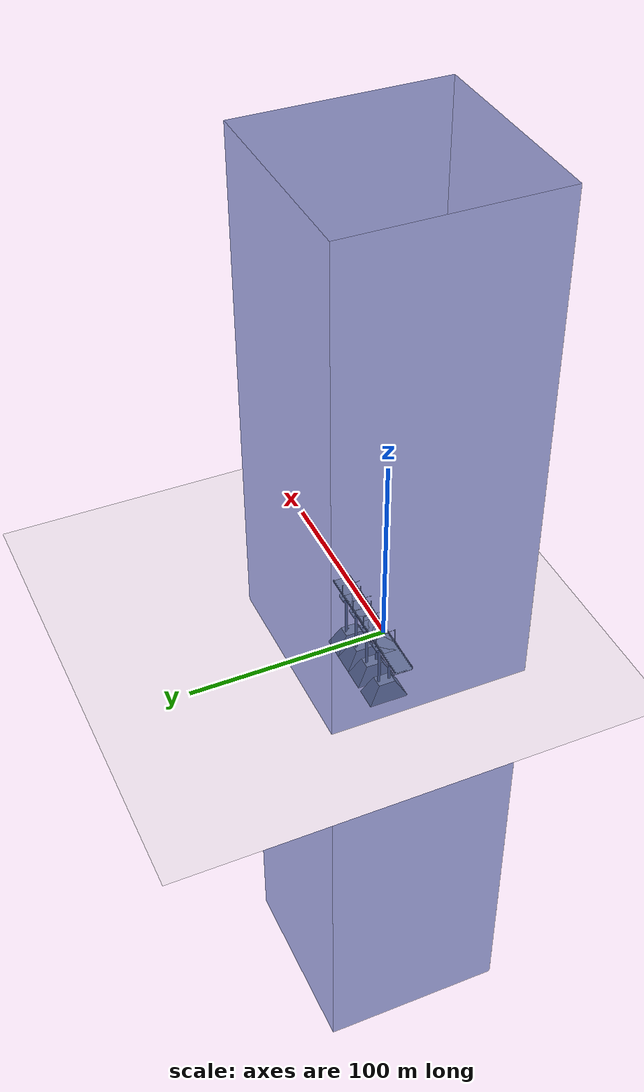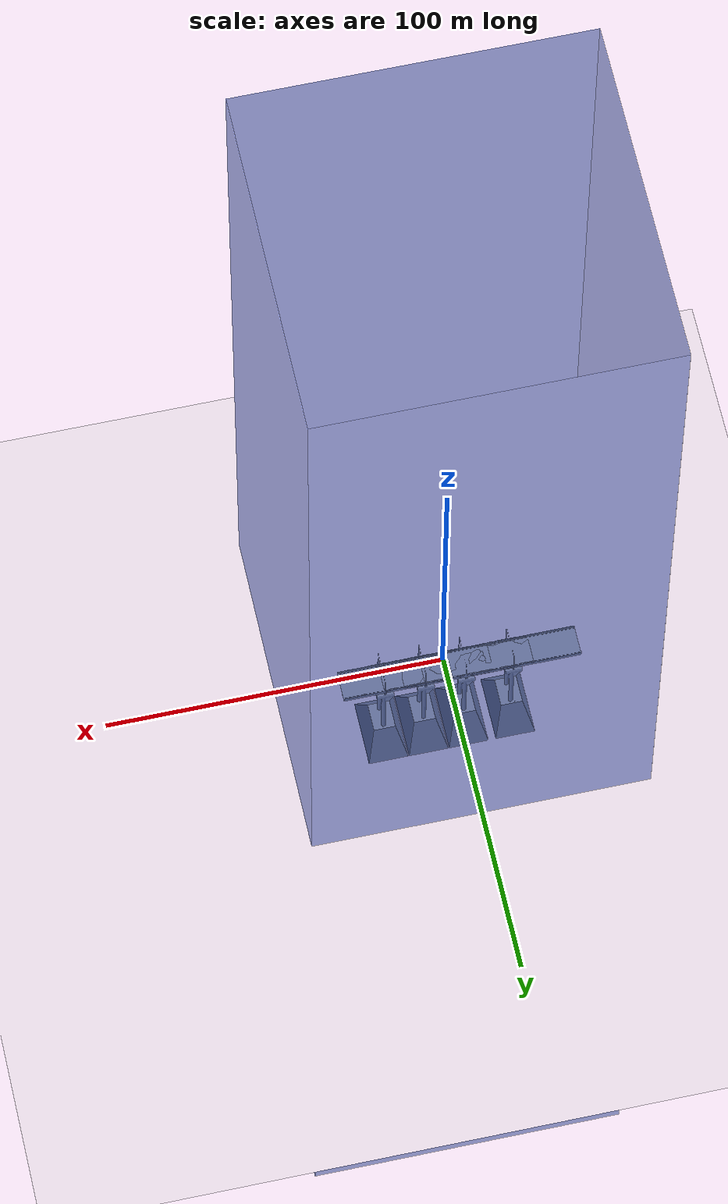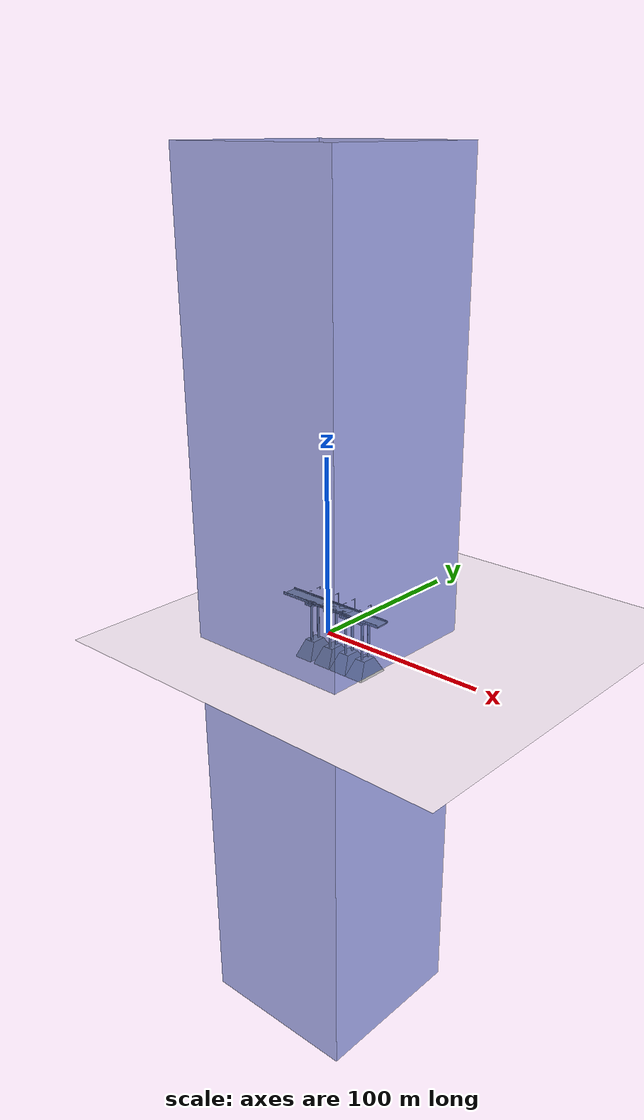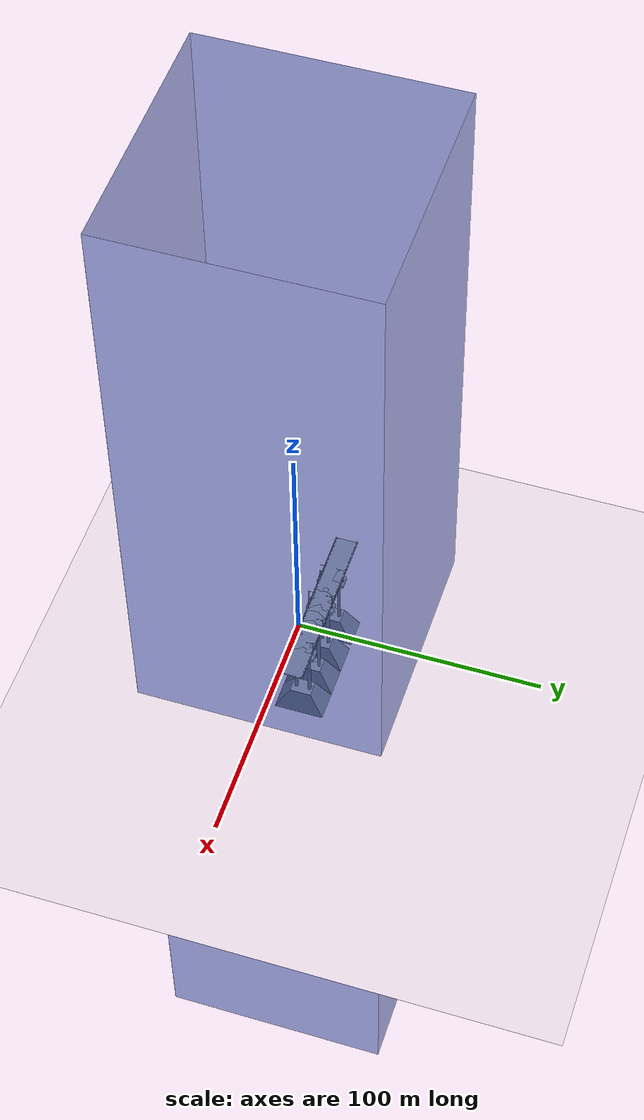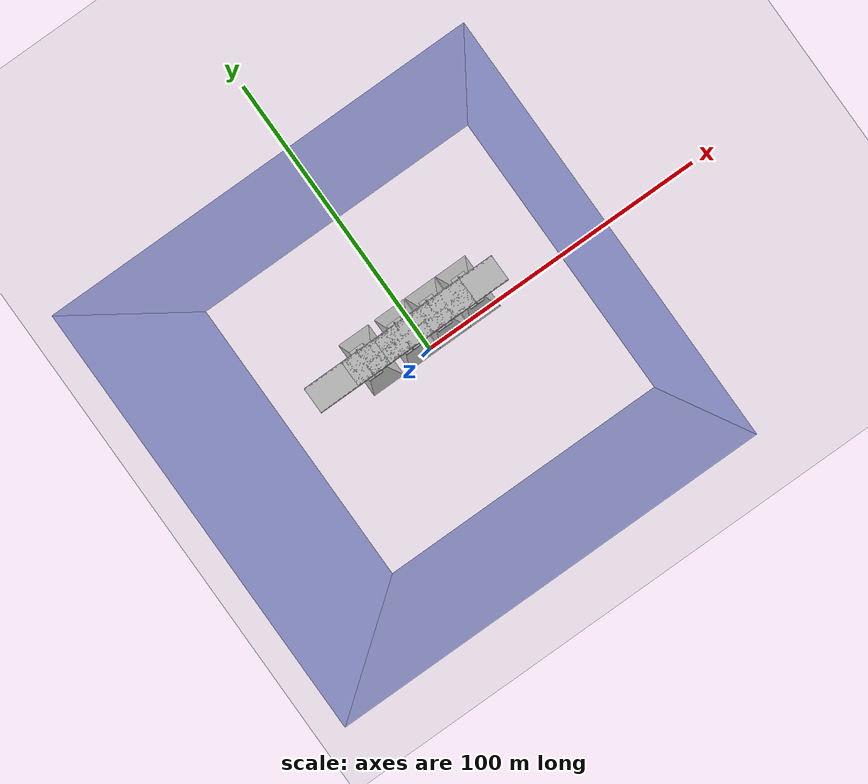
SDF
<?xml version="1.0" ?>
<sdf version="1.4">
  <world name="default">
    <include>
      <uri>model://ground_plane</uri>
    </include>
    <include>
      <uri>model://sun</uri>
    </include>

		<model name='bridge_1'>
      <static>1</static>
      <link name='link'>
        <pose>0 0 0.01 0 -0 0</pose>
        <collision name='wall1'>
          <geometry>
            <mesh>
              <uri>file://meshes/bridges/bridge_01.dae</uri>
							<scale>1 1 1</scale>

            </mesh>
          </geometry>
          <max_contacts>10</max_contacts>
          <surface>
            <bounce/>
            <friction>
              <ode/>
            </friction>
            <contact>
              <ode/>
            </contact>
          </surface>
        </collision>
        <visual name='visual1'>
          <geometry>
            <mesh>
              <uri>file://meshes/bridges/bridge_01.dae</uri>
							<scale>1 1 1</scale>
            </mesh>
          </geometry>
        </visual>
        <velocity_decay>
          <linear>0</linear>
          <angular>0</angular>
        </velocity_decay>
        <self_collide>0</self_collide>
        <kinematic>0</kinematic>
        <gravity>1</gravity>
      </link>
      <pose>8 8 -22 0 0 0</pose>
    </model>

				<model name='bridge_2'>
      <static>1</static>
      <link name='link'>
        <pose>0 0 0.01 0 -0 0</pose>
        <collision name='wall1'>
          <geometry>
            <mesh>
              <uri>file://meshes/bridges/bridge_01.dae</uri>
							<scale>1 1 1</scale>

            </mesh>
          </geometry>
          <max_contacts>10</max_contacts>
          <surface>
            <bounce/>
            <friction>
              <ode/>
            </friction>
            <contact>
              <ode/>
            </contact>
          </surface>
        </collision>
        <visual name='visual1'>
          <geometry>
            <mesh>
              <uri>file://meshes/bridges/bridge_01.dae</uri>
							<scale>1 1 1</scale>
            </mesh>
          </geometry>
        </visual>
        <velocity_decay>
          <linear>0</linear>
          <angular>0</angular>
        </velocity_decay>
        <self_collide>0</self_collide>
        <kinematic>0</kinematic>
        <gravity>1</gravity>
      </link>
      <pose>-4 8 -22 0 0 0</pose>
    </model>

						<model name='bridge_3'>
      <static>1</static>
      <link name='link'>
        <pose>0 0 0.01 0 -0 0</pose>
        <collision name='wall1'>
          <geometry>
            <mesh>
              <uri>file://meshes/bridges/bridge_01.dae</uri>
							<scale>1 1 1</scale>

            </mesh>
          </geometry>
          <max_contacts>10</max_contacts>
          <surface>
            <bounce/>
            <friction>
              <ode/>
            </friction>
            <contact>
              <ode/>
            </contact>
          </surface>
        </collision>
        <visual name='visual1'>
          <geometry>
            <mesh>
              <uri>file://meshes/bridges/bridge_01.dae</uri>
							<scale>1 1 1</scale>
            </mesh>
          </geometry>
        </visual>
        <velocity_decay>
          <linear>0</linear>
          <angular>0</angular>
        </velocity_decay>
        <self_collide>0</self_collide>
        <kinematic>0</kinematic>
        <gravity>1</gravity>
      </link>
      <pose>-18 8 -22 0 0 0</pose>
    </model>

						<model name='bridge_4'>
      <static>1</static>
      <link name='link'>
        <pose>0 0 0.01 0 -0 0</pose>
        <collision name='wall1'>
          <geometry>
            <mesh>
              <uri>file://meshes/bridges/bridge_01.dae</uri>
							<scale>1 1 1</scale>

            </mesh>
          </geometry>
          <max_contacts>10</max_contacts>
          <surface>
            <bounce/>
            <friction>
              <ode/>
            </friction>
            <contact>
              <ode/>
            </contact>
          </surface>
        </collision>
        <visual name='visual1'>
          <geometry>
            <mesh>
              <uri>file://meshes/bridges/bridge_01.dae</uri>
							<scale>1 1 1</scale>
            </mesh>
          </geometry>
        </visual>
        <velocity_decay>
          <linear>0</linear>
          <angular>0</angular>
        </velocity_decay>
        <self_collide>0</self_collide>
        <kinematic>0</kinematic>
        <gravity>1</gravity>
      </link>
      <pose>20 8 -22 0 0 0</pose>
    </model>

				  <model name='bridge_defect_1'>
      <pose>-1.335 5.647 10.335 0 0 0</pose>
      <link name='link'>
        <inertial>
          <mass>1</mass>
          <inertia>
            <ixx>1</ixx>
            <ixy>0</ixy>
            <ixz>0</ixz>
            <iyy>1</iyy>
            <iyz>0</iyz>
            <izz>1</izz>
          </inertia>
        </inertial>
        <visual name='visual'>
          <geometry>
            <box>
              <size>0.05 0.05 0.05</size>
            </box>
          </geometry>
          <material>
            <script>
              <uri>file://media/materials/scripts/gazebo.material</uri>
              <name>Gazebo/Black</name>
            </script>
          </material>
        </visual>
        <velocity_decay>
          <linear>0</linear>
          <angular>0</angular>
        </velocity_decay>
        <self_collide>0</self_collide>
        <kinematic>1</kinematic>
        <gravity>0</gravity>
      </link>
      <static>1</static>
    </model>

						  <model name='bridge_defect_2'>
      <pose>3.8 8.98 11.22 0 0 0</pose>
      <link name='link'>
        <inertial>
          <mass>1</mass>
          <inertia>
            <ixx>1</ixx>
            <ixy>0</ixy>
            <ixz>0</ixz>
            <iyy>1</iyy>
            <iyz>0</iyz>
            <izz>1</izz>
          </inertia>
        </inertial>
        <visual name='visual'>
          <geometry>
            <box>
              <size>0.05 0.05 0.05</size>
            </box>
          </geometry>
          <material>
            <script>
              <uri>file://media/materials/scripts/gazebo.material</uri>
              <name>Gazebo/Black</name>
            </script>
          </material>
        </visual>
        <velocity_decay>
          <linear>0</linear>
          <angular>0</angular>
        </velocity_decay>
        <self_collide>0</self_collide>
        <kinematic>1</kinematic>
        <gravity>0</gravity>
      </link>
      <static>1</static>
    </model>

						  <model name='bridge_defect_3'>
      <pose>2.86 8.315 11.215 0 0 0</pose>
      <link name='link'>
        <inertial>
          <mass>1</mass>
          <inertia>
            <ixx>1</ixx>
            <ixy>0</ixy>
            <ixz>0</ixz>
            <iyy>1</iyy>
            <iyz>0</iyz>
            <izz>1</izz>
          </inertia>
        </inertial>
        <visual name='visual'>
          <geometry>
            <box>
              <size>0.1 0.03 0.03</size>
            </box>
          </geometry>
          <material>
            <script>
              <uri>file://media/materials/scripts/gazebo.material</uri>
              <name>Gazebo/Black</name>
            </script>
          </material>
        </visual>
        <velocity_decay>
          <linear>0</linear>
          <angular>0</angular>
        </velocity_decay>
        <self_collide>0</self_collide>
        <kinematic>1</kinematic>
        <gravity>0</gravity>
      </link>
      <static>1</static>
    </model>

		  <model name='sky_1'>
      <pose>0 50 -0.5 0 0 0</pose>
      <link name='link'>
        <inertial>
          <mass>1</mass>
          <inertia>
            <ixx>1</ixx>
            <ixy>0</ixy>
            <ixz>0</ixz>
            <iyy>1</iyy>
            <iyz>0</iyz>
            <izz>1</izz>
          </inertia>
        </inertial>
        <visual name='visual'>
          <geometry>
            <box>
              <size>100 0.1 500</size>
            </box>
          </geometry>
          <material>
            <script>
              <uri>file://media/materials/scripts/gazebo.material</uri>
              <name>Gazebo/Blue</name>
            </script>
          </material>
          <transparency>0.5</transparency>
        </visual>
        <velocity_decay>
          <linear>0</linear>
          <angular>0</angular>
        </velocity_decay>
        <self_collide>0</self_collide>
        <kinematic>1</kinematic>
        <gravity>0</gravity>
      </link>
      <static>1</static>
    </model>

				  <model name='sky_2'>
      <pose>50 0 -0.5 0 0 0</pose>
      <link name='link'>
        <inertial>
          <mass>1</mass>
          <inertia>
            <ixx>1</ixx>
            <ixy>0</ixy>
            <ixz>0</ixz>
            <iyy>1</iyy>
            <iyz>0</iyz>
            <izz>1</izz>
          </inertia>
        </inertial>
        <visual name='visual'>
          <geometry>
            <box>
              <size>0.1 100  500</size>
            </box>
          </geometry>
          <material>
            <script>
              <uri>file://media/materials/scripts/gazebo.material</uri>
              <name>Gazebo/Blue</name>
            </script>
          </material>
          <transparency>0.5</transparency>
        </visual>
        <velocity_decay>
          <linear>0</linear>
          <angular>0</angular>
        </velocity_decay>
        <self_collide>0</self_collide>
        <kinematic>1</kinematic>
        <gravity>0</gravity>
      </link>
      <static>1</static>
    </model>

				  <model name='sky_3'>
      <pose>0 -50 -0.5 0 0 0</pose>
      <link name='link'>
        <inertial>
          <mass>1</mass>
          <inertia>
            <ixx>1</ixx>
            <ixy>0</ixy>
            <ixz>0</ixz>
            <iyy>1</iyy>
            <iyz>0</iyz>
            <izz>1</izz>
          </inertia>
        </inertial>
        <visual name='visual'>
          <geometry>
            <box>
              <size>100 0.1 500</size>
            </box>
          </geometry>
          <material>
            <script>
              <uri>file://media/materials/scripts/gazebo.material</uri>
              <name>Gazebo/Blue</name>
            </script>
          </material>
          <transparency>0.5</transparency>
        </visual>
        <velocity_decay>
          <linear>0</linear>
          <angular>0</angular>
        </velocity_decay>
        <self_collide>0</self_collide>
        <kinematic>1</kinematic>
        <gravity>0</gravity>
      </link>
      <static>1</static>
    </model>

				  <model name='sky_4'>
      <pose>-50 0 -0.5 0 0 0</pose>
      <link name='link'>
        <inertial>
          <mass>1</mass>
          <inertia>
            <ixx>1</ixx>
            <ixy>0</ixy>
            <ixz>0</ixz>
            <iyy>1</iyy>
            <iyz>0</iyz>
            <izz>1</izz>
          </inertia>
        </inertial>
        <visual name='visual'>
          <geometry>
            <box>
              <size>0.1 100  500</size>
            </box>
          </geometry>
          <material>
            <script>
              <uri>file://media/materials/scripts/gazebo.material</uri>
              <name>Gazebo/Blue</name>
            </script>
          </material>
          <transparency>0.5</transparency>
        </visual>
        <velocity_decay>
          <linear>0</linear>
          <angular>0</angular>
        </velocity_decay>
        <self_collide>0</self_collide>
        <kinematic>1</kinematic>
        <gravity>0</gravity>
      </link>
      <static>1</static>
    </model>

    <physics type='ode'>
      <max_step_size>0.001</max_step_size>
      <real_time_factor>1</real_time_factor>
      <real_time_update_rate>1000</real_time_update_rate>
      <gravity>0 0 0</gravity>
    </physics>

  </world>
</sdf>
